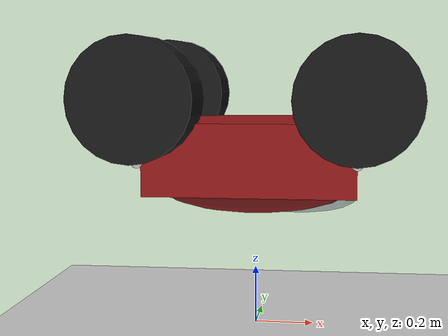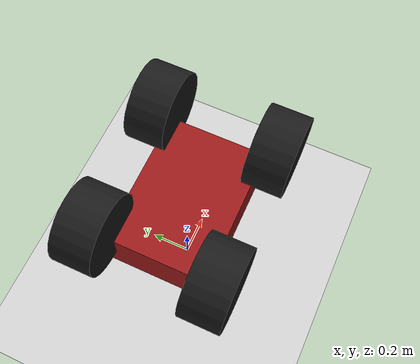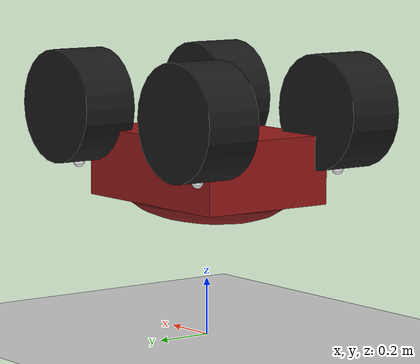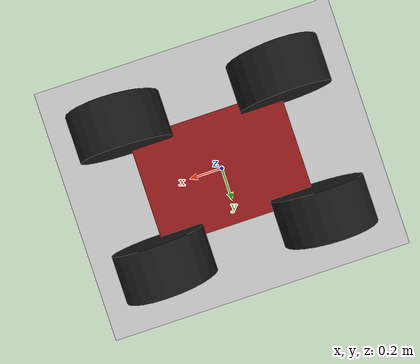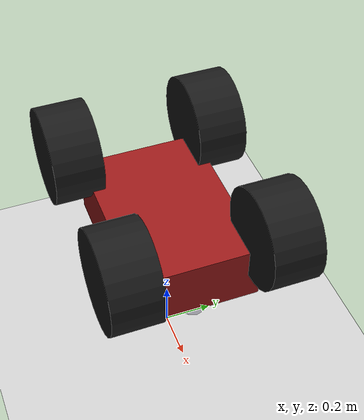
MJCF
<mujoco model="monster_truck_flip">
  <option gravity="0 0 -9.81" integrator="RK4" timestep="0.001"/>
  <compiler angle="radian"/>

  <default>
    <geom contype="1" conaffinity="1" friction="2.0 0.5 0.02"
          solimp="0.9 0.9 0.01" solref="0.005 1" density="800"/>
    <joint damping="0.2"/>
  </default>

  <visual>
    <quality shadowsize="4096"/>
    <map znear="0.01" zfar="20"/>
  </visual>

  <worldbody>
    <!-- Lighting and ground -->
    <light name="sun" pos="0 0 10" dir="0 0 -1" diffuse="1 1 1"/>
    <geom name="ground" type="plane" size="10 10 0.1" rgba="0.8 0.8 0.8 1"/>

    <!-- Upside-down monster truck -->
    <body name="chassis" pos="0 0 0.6" quat="0 1 0 0">
      <freejoint/>

      <!-- Base rectangular chassis -->
      <geom type="box" size="0.35 0.25 0.12" rgba="0.6 0.1 0.1 1" mass="450"/>

      <!-- Curved roof dome -->
      <geom type="ellipsoid" size="0.35 0.25 0.10" pos="0 0 0.10"
            rgba="0.5 0.1 0.1 1" />

      <!-- Optional windshield -->
      <geom type="ellipsoid" size="0.20 0.10 0.05" pos="0.15 0 0.15"
            rgba="0.3 0.3 0.4 0.4"/>

      <!-- Massive, heavy wheels -->
      <body name="wheel_fl" pos=" 0.35  0.30 -0.20">
        <joint name="j_fl" type="hinge" axis="0 1 0" damping="4"/>
        <geom type="cylinder" size="0.20 0.10" euler="1.57 0 0"
              rgba="0.1 0.1 0.1 1" mass="20"/>
        <!-- visual marker (no physics) -->
        <geom name="mark_fl" type="sphere" size="0.02"
              pos="0 0 0.20" rgba="1 1 1 1"
              contype="0" conaffinity="0" density="0"/>
      </body>

      <body name="wheel_fr" pos=" 0.35 -0.30 -0.20">
        <joint name="j_fr" type="hinge" axis="0 1 0" damping="4"/>
        <geom type="cylinder" size="0.20 0.10" euler="1.57 0 0"
              rgba="0.1 0.1 0.1 1" mass="20"/>
        <!-- visual marker (no physics) -->
        <geom name="mark_fr" type="sphere" size="0.02"
              pos="0 0 0.20" rgba="1 1 1 1"
              contype="0" conaffinity="0" density="0"/>
      </body>

      <body name="wheel_rl" pos="-0.35  0.30 -0.20">
        <joint name="j_rl" type="hinge" axis="0 1 0" damping="4"/>
        <geom type="cylinder" size="0.20 0.10" euler="1.57 0 0"
              rgba="0.1 0.1 0.1 1" mass="20"/>
        <!-- visual marker (no physics) -->
        <geom name="mark_rl" type="sphere" size="0.02"
              pos="0 0 0.20" rgba="1 1 1 1"
              contype="0" conaffinity="0" density="0"/>
      </body>

      <body name="wheel_rr" pos="-0.35 -0.30 -0.20">
        <joint name="j_rr" type="hinge" axis="0 1 0" damping="4"/>
        <geom type="cylinder" size="0.20 0.10" euler="1.57 0 0"
              rgba="0.1 0.1 0.1 1" mass="20"/>
        <!-- visual marker (no physics) -->
        <geom name="mark_rr" type="sphere" size="0.02"
              pos="0 0 0.20" rgba="1 1 1 1"
              contype="0" conaffinity="0" density="0"/>
      </body>
    </body>
  </worldbody>

  <actuator>
    <motor name="front_left_motor"  joint="j_fl" gear="450"/>
    <motor name="front_right_motor" joint="j_fr" gear="450"/>
    <motor name="rear_left_motor"   joint="j_rl" gear="450"/>
    <motor name="rear_right_motor"  joint="j_rr" gear="450"/>
  </actuator>
</mujoco>
